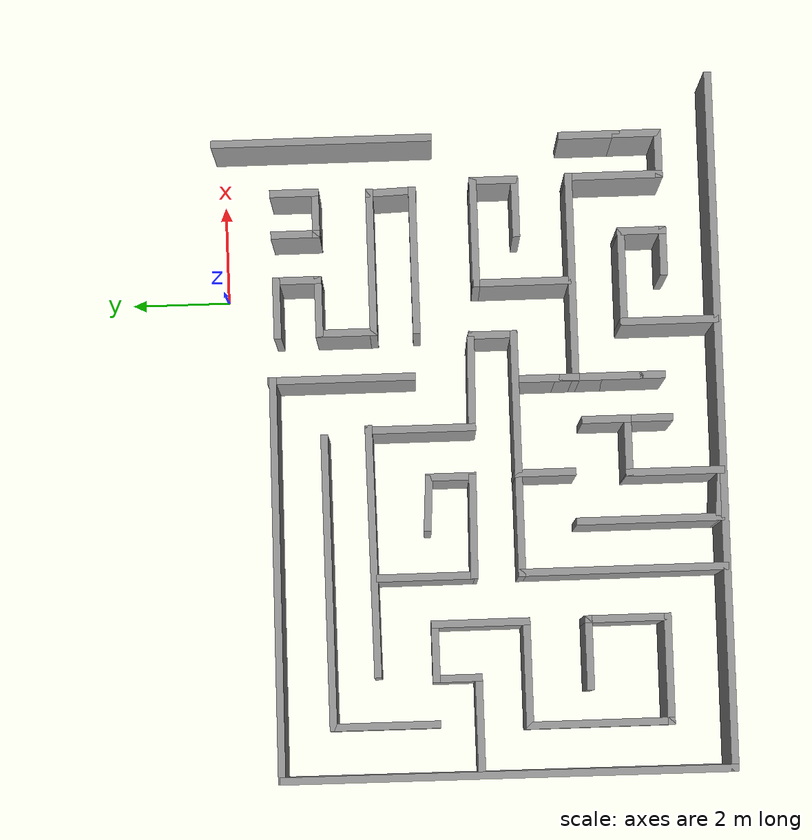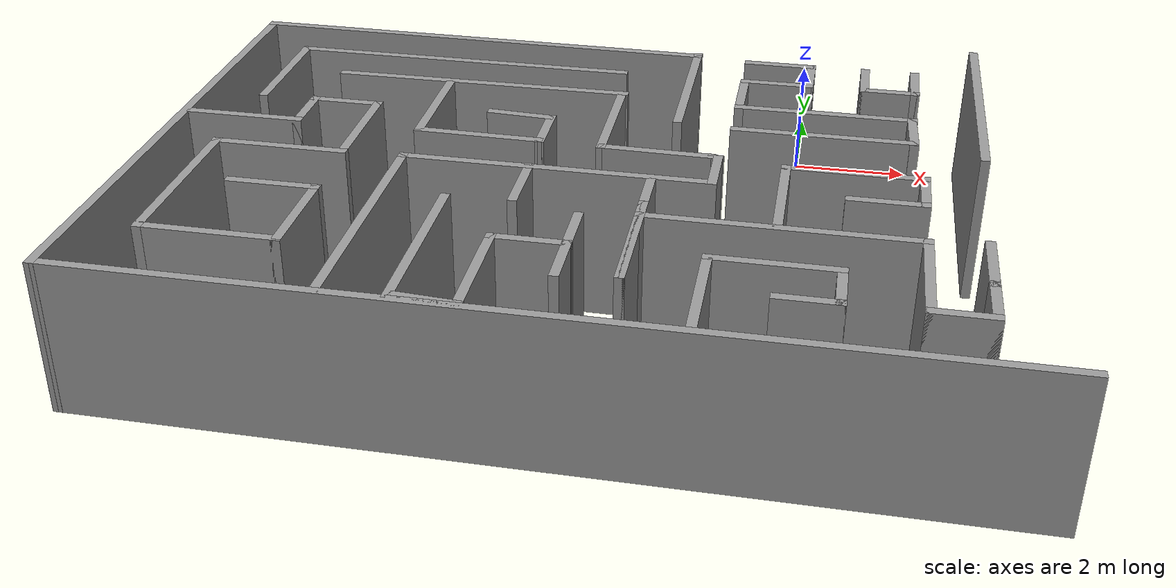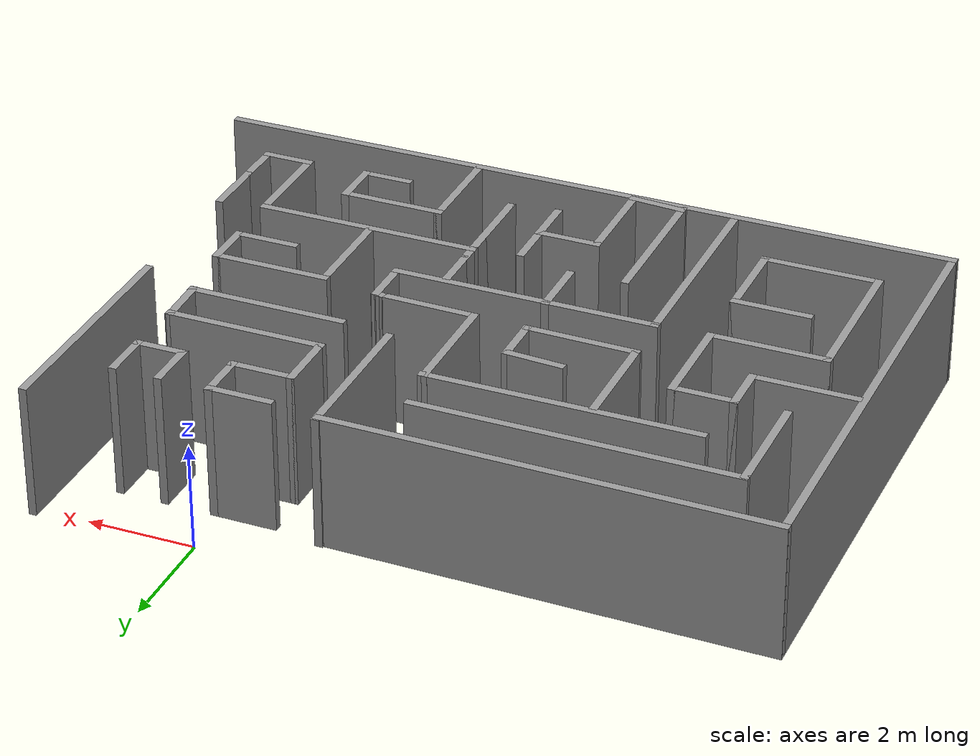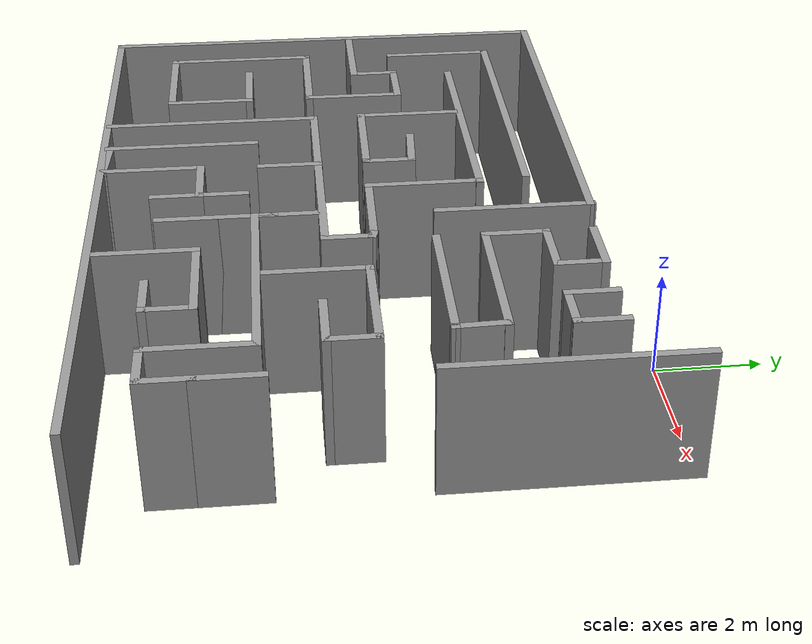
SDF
<sdf version="1.5">
 <model name="Maze2">
  <pose>-2.952 0.082564 0 0 -0 0</pose>
  <link name="Wall_0">
   <collision name="Wall_0_Collision">
    <geometry><box><size>3 0.15 2.5</size></box></geometry>
    <pose>0 0 1.25 0 -0 0</pose>
   </collision>
   <visual name="Wall_0_Visual">
    <pose>0 0 1.25 0 -0 0</pose>
    <geometry><box><size>3 0.15 2.5</size></box></geometry>
    <material>
     <script><uri>file://media/materials/scripts/gazebo.material</uri><name>Gazebo/Grey</name></script>
     <ambient>1 1 1 1</ambient>
    </material>
    <meta><layer>0</layer></meta>
   </visual>
   <pose>1.05662 -2.41881 0 0 -0 1.5708</pose>
  </link>
  <link name="Wall_1">
   <collision name="Wall_1_Collision">
    <geometry><box><size>8.23971 0.15 2.5</size></box></geometry>
    <pose>0 0 1.25 0 -0 0</pose>
   </collision>
   <visual name="Wall_1_Visual">
    <pose>0 0 1.25 0 -0 0</pose>
    <geometry><box><size>8.23971 0.15 2.5</size></box></geometry>
    <material>
     <script><uri>file://media/materials/scripts/gazebo.material</uri><name>Gazebo/Grey</name></script>
     <ambient>1 1 1 1</ambient>
    </material>
    <meta><layer>0</layer></meta>
   </visual>
   <pose>-2.9881 -0.991516 0 0 -0 3.13346</pose>
  </link>
  <link name="Wall_10">
   <collision name="Wall_10_Collision">
    <geometry><box><size>2.21006 0.15 2.5</size></box></geometry>
    <pose>0 0 1.25 0 -0 0</pose>
   </collision>
   <visual name="Wall_10_Visual">
    <pose>0 0 1.25 0 -0 0</pose>
    <geometry><box><size>2.21006 0.15 2.5</size></box></geometry>
    <material>
     <script><uri>file://media/materials/scripts/gazebo.material</uri><name>Gazebo/Grey</name></script>
     <ambient>1 1 1 1</ambient>
    </material>
    <meta><layer>0</layer></meta>
   </visual>
   <pose>-5.99208 -3.09041 0 0 -0 -1.57273</pose>
  </link>
  <link name="Wall_100">
   <collision name="Wall_100_Collision">
    <geometry><box><size>1 0.15 2.5</size></box></geometry>
    <pose>0 0 1.25 0 -0 0</pose>
   </collision>
   <visual name="Wall_100_Visual">
    <pose>0 0 1.25 0 -0 0</pose>
    <geometry><box><size>1 0.15 2.5</size></box></geometry>
    <material>
     <script><uri>file://media/materials/scripts/gazebo.material</uri><name>Gazebo/Grey</name></script>
     <ambient>1 1 1 1</ambient>
    </material>
    <meta><layer>0</layer></meta>
   </visual>
   <pose>3.45154 -9.03895 0 0 -0 3.14159</pose>
  </link>
  <link name="Wall_102">
   <collision name="Wall_102_Collision">
    <geometry><box><size>1 0.15 2.5</size></box></geometry>
    <pose>0 0 1.25 0 -0 0</pose>
   </collision>
   <visual name="Wall_102_Visual">
    <pose>0 0 1.25 0 -0 0</pose>
    <geometry><box><size>1 0.15 2.5</size></box></geometry>
    <material>
     <script><uri>file://media/materials/scripts/gazebo.material</uri><name>Gazebo/Grey</name></script>
     <ambient>1 1 1 1</ambient>
    </material>
    <meta><layer>0</layer></meta>
   </visual>
   <pose>0.053539 -8.60778 0 0 -0 -1.5708</pose>
  </link>
  <link name="Wall_12">
   <collision name="Wall_12_Collision">
    <geometry><box><size>5.1119 0.15 2.5</size></box></geometry>
    <pose>0 0 1.25 0 -0 0</pose>
   </collision>
   <visual name="Wall_12_Visual">
    <pose>0 0 1.25 0 -0 0</pose>
    <geometry><box><size>5.1119 0.15 2.5</size></box></geometry>
    <material>
     <script><uri>file://media/materials/scripts/gazebo.material</uri><name>Gazebo/Grey</name></script>
     <ambient>1 1 1 1</ambient>
    </material>
    <meta><layer>0</layer></meta>
   </visual>
   <pose>-2.46512 -2.94659 0 0 -0 0.006165</pose>
  </link>
  <link name="Wall_13">
   <collision name="Wall_13_Collision">
    <geometry><box><size>2.25 0.15 2.5</size></box></geometry>
    <pose>0 0 1.25 0 -0 0</pose>
   </collision>
   <visual name="Wall_13_Visual">
    <pose>0 0 1.25 0 -0 0</pose>
    <geometry><box><size>2.25 0.15 2.5</size></box></geometry>
    <material>
     <script><uri>file://media/materials/scripts/gazebo.material</uri><name>Gazebo/Grey</name></script>
     <ambient>1 1 1 1</ambient>
    </material>
    <meta><layer>0</layer></meta>
   </visual>
   <pose>-0.014812 -3.9813 0 0 -0 -1.5708</pose>
  </link>
  <link name="Wall_134">
   <collision name="Wall_134_Collision">
    <geometry><box><size>4.5 0.15 2.5</size></box></geometry>
    <pose>0 0 1.25 0 -0 0</pose>
   </collision>
   <visual name="Wall_134_Visual">
    <pose>0 0 1.25 0 -0 0</pose>
    <geometry><box><size>4.5 0.15 2.5</size></box></geometry>
    <material>
     <script><uri>file://media/materials/scripts/gazebo.material</uri><name>Gazebo/Grey</name></script>
     <ambient>1 1 1 1</ambient>
    </material>
    <meta><layer>0</layer></meta>
   </visual>
   <pose>5.9379 -2.1578 0 0 -0 -1.5708</pose>
  </link>
  <link name="Wall_136">
   <collision name="Wall_136_Collision">
    <geometry><box><size>1 0.15 2.5</size></box></geometry>
    <pose>0 0 1.25 0 -0 0</pose>
   </collision>
   <visual name="Wall_136_Visual">
    <pose>0 0 1.25 0 -0 0</pose>
    <geometry><box><size>1 0.15 2.5</size></box></geometry>
    <material>
     <script><uri>file://media/materials/scripts/gazebo.material</uri><name>Gazebo/Grey</name></script>
     <ambient>1 1 1 1</ambient>
    </material>
    <meta><layer>0</layer></meta>
   </visual>
   <pose>5.45373 -9.01313 0 0 -0 0</pose>
  </link>
  <link name="Wall_137">
   <collision name="Wall_137_Collision">
    <geometry><box><size>1 0.15 2.5</size></box></geometry>
    <pose>0 0 1.25 0 -0 0</pose>
   </collision>
   <visual name="Wall_137_Visual">
    <pose>0 0 1.25 0 -0 0</pose>
    <geometry><box><size>1 0.15 2.5</size></box></geometry>
    <material>
     <script><uri>file://media/materials/scripts/gazebo.material</uri><name>Gazebo/Grey</name></script>
     <ambient>1 1 1 1</ambient>
    </material>
    <meta><layer>0</layer></meta>
   </visual>
   <pose>5.87873 -8.58813 0 0 -0 1.5708</pose>
  </link>
  <link name="Wall_138">
   <collision name="Wall_138_Collision">
    <geometry><box><size>1.25 0.15 2.5</size></box></geometry>
    <pose>0 0 1.25 0 -0 0</pose>
   </collision>
   <visual name="Wall_138_Visual">
    <pose>0 0 1.25 0 -0 0</pose>
    <geometry><box><size>1.25 0.15 2.5</size></box></geometry>
    <material>
     <script><uri>file://media/materials/scripts/gazebo.material</uri><name>Gazebo/Grey</name></script>
     <ambient>1 1 1 1</ambient>
    </material>
    <meta><layer>0</layer></meta>
   </visual>
   <pose>5.87873 -7.61313 0 0 -0 1.5708</pose>
  </link>
  <link name="Wall_14">
   <collision name="Wall_14_Collision">
    <geometry><box><size>1.88847 0.15 2.5</size></box></geometry>
    <pose>0 0 1.25 0 -0 0</pose>
   </collision>
   <visual name="Wall_14_Visual">
    <pose>0 0 1.25 0 -0 0</pose>
    <geometry><box><size>1.88847 0.15 2.5</size></box></geometry>
    <material>
     <script><uri>file://media/materials/scripts/gazebo.material</uri><name>Gazebo/Grey</name></script>
     <ambient>1 1 1 1</ambient>
    </material>
    <meta><layer>0</layer></meta>
   </visual>
   <pose>0.884876 -5.04659 0 0 -0 -0.017597</pose>
  </link>
  <link name="Wall_140">
   <collision name="Wall_140_Collision">
    <geometry><box><size>2 0.15 2.5</size></box></geometry>
    <pose>0 0 1.25 0 -0 0</pose>
   </collision>
   <visual name="Wall_140_Visual">
    <pose>0 0 1.25 0 -0 0</pose>
    <geometry><box><size>2 0.15 2.5</size></box></geometry>
    <material>
     <script><uri>file://media/materials/scripts/gazebo.material</uri><name>Gazebo/Grey</name></script>
     <ambient>1 1 1 1</ambient>
    </material>
    <meta><layer>0</layer></meta>
   </visual>
   <pose>2.91262 -6.14071 0 0 -0 1.5708</pose>
  </link>
  <link name="Wall_141">
   <collision name="Wall_141_Collision">
    <geometry><box><size>2.25 0.15 2.5</size></box></geometry>
    <pose>0 0 1.25 0 -0 0</pose>
   </collision>
   <visual name="Wall_141_Visual">
    <pose>0 0 1.25 0 -0 0</pose>
    <geometry><box><size>2.25 0.15 2.5</size></box></geometry>
    <material>
     <script><uri>file://media/materials/scripts/gazebo.material</uri><name>Gazebo/Grey</name></script>
     <ambient>1 1 1 1</ambient>
    </material>
    <meta><layer>0</layer></meta>
   </visual>
   <pose>3.96261 -5.21571 0 0 -0 0</pose>
  </link>
  <link name="Wall_142">
   <collision name="Wall_142_Collision">
    <geometry><box><size>1 0.15 2.5</size></box></geometry>
    <pose>0 0 1.25 0 -0 0</pose>
   </collision>
   <visual name="Wall_142_Visual">
    <pose>0 0 1.25 0 -0 0</pose>
    <geometry><box><size>1 0.15 2.5</size></box></geometry>
    <material>
     <script><uri>file://media/materials/scripts/gazebo.material</uri><name>Gazebo/Grey</name></script>
     <ambient>1 1 1 1</ambient>
    </material>
    <meta><layer>0</layer></meta>
   </visual>
   <pose>5.01262 -5.64071 0 0 -0 -1.5708</pose>
  </link>
  <link name="Wall_143">
   <collision name="Wall_143_Collision">
    <geometry><box><size>1.25 0.15 2.5</size></box></geometry>
    <pose>0 0 1.25 0 -0 0</pose>
   </collision>
   <visual name="Wall_143_Visual">
    <pose>0 0 1.25 0 -0 0</pose>
    <geometry><box><size>1.25 0.15 2.5</size></box></geometry>
    <material>
     <script><uri>file://media/materials/scripts/gazebo.material</uri><name>Gazebo/Grey</name></script>
     <ambient>1 1 1 1</ambient>
    </material>
    <meta><layer>0</layer></meta>
   </visual>
   <pose>4.46262 -6.06571 0 0 -0 3.14159</pose>
  </link>
  <link name="Wall_145">
   <collision name="Wall_145_Collision">
    <geometry><box><size>3 0.15 2.5</size></box></geometry>
    <pose>0 0 1.25 0 -0 0</pose>
   </collision>
   <visual name="Wall_145_Visual">
    <pose>0 0 1.25 0 -0 0</pose>
    <geometry><box><size>3 0.15 2.5</size></box></geometry>
    <material>
     <script><uri>file://media/materials/scripts/gazebo.material</uri><name>Gazebo/Grey</name></script>
     <ambient>1 1 1 1</ambient>
    </material>
    <meta><layer>0</layer></meta>
   </visual>
   <pose>3.43258 -3.97421 0 0 -0 0</pose>
  </link>
  <link name="Wall_146">
   <collision name="Wall_146_Collision">
    <geometry><box><size>1.03086 0.15 2.5</size></box></geometry>
    <pose>0 0 1.25 0 -0 0</pose>
   </collision>
   <visual name="Wall_146_Visual">
    <pose>0 0 1.25 0 -0 0</pose>
    <geometry><box><size>1.03086 0.15 2.5</size></box></geometry>
    <material>
     <script><uri>file://media/materials/scripts/gazebo.material</uri><name>Gazebo/Grey</name></script>
     <ambient>1 1 1 1</ambient>
    </material>
    <meta><layer>0</layer></meta>
   </visual>
   <pose>4.84229 -3.54165 0 0 -0 1.60553</pose>
  </link>
  <link name="Wall_147">
   <collision name="Wall_147_Collision">
    <geometry><box><size>3 0.15 2.5</size></box></geometry>
    <pose>0 0 1.25 0 -0 0</pose>
   </collision>
   <visual name="Wall_147_Visual">
    <pose>0 0 1.25 0 -0 0</pose>
    <geometry><box><size>3 0.15 2.5</size></box></geometry>
    <material>
     <script><uri>file://media/materials/scripts/gazebo.material</uri><name>Gazebo/Grey</name></script>
     <ambient>1 1 1 1</ambient>
    </material>
    <meta><layer>0</layer></meta>
   </visual>
   <pose>3.41729 -3.10148 0 0 -0 3.14159</pose>
  </link>
  <link name="Wall_149">
   <collision name="Wall_149_Collision">
    <geometry><box><size>1.25 0.15 2.5</size></box></geometry>
    <pose>0 0 1.25 0 -0 0</pose>
   </collision>
   <visual name="Wall_149_Visual">
    <pose>0 0 1.25 0 -0 0</pose>
    <geometry><box><size>1.25 0.15 2.5</size></box></geometry>
    <material>
     <script><uri>file://media/materials/scripts/gazebo.material</uri><name>Gazebo/Grey</name></script>
     <ambient>1 1 1 1</ambient>
    </material>
    <meta><layer>0</layer></meta>
   </visual>
   <pose>1.99229 -2.55148 0 0 -0 1.5708</pose>
  </link>
  <link name="Wall_15">
   <collision name="Wall_15_Collision">
    <geometry><box><size>0.25 0.15 2.5</size></box></geometry>
    <pose>0 0 1.25 0 -0 0</pose>
   </collision>
   <visual name="Wall_15_Visual">
    <pose>0 0 1.25 0 -0 0</pose>
    <geometry><box><size>0.25 0.15 2.5</size></box></geometry>
    <material>
     <script><uri>file://media/materials/scripts/gazebo.material</uri><name>Gazebo/Grey</name></script>
     <ambient>1 1 1 1</ambient>
    </material>
    <meta><layer>0</layer></meta>
   </visual>
   <pose>1.80227 -5.07483 0 0 -0 -0.261799</pose>
  </link>
  <link name="Wall_150">
   <collision name="Wall_150_Collision">
    <geometry><box><size>1.25 0.15 2.5</size></box></geometry>
    <pose>0 0 1.25 0 -0 0</pose>
   </collision>
   <visual name="Wall_150_Visual">
    <pose>0 0 1.25 0 -0 0</pose>
    <geometry><box><size>1.25 0.15 2.5</size></box></geometry>
    <material>
     <script><uri>file://media/materials/scripts/gazebo.material</uri><name>Gazebo/Grey</name></script>
     <ambient>1 1 1 1</ambient>
    </material>
    <meta><layer>0</layer></meta>
   </visual>
   <pose>2.54229 -2.00148 0 0 -0 0</pose>
  </link>
  <link name="Wall_151">
   <collision name="Wall_151_Collision">
    <geometry><box><size>1 0.15 2.5</size></box></geometry>
    <pose>0 0 1.25 0 -0 0</pose>
   </collision>
   <visual name="Wall_151_Visual">
    <pose>0 0 1.25 0 -0 0</pose>
    <geometry><box><size>1 0.15 2.5</size></box></geometry>
    <material>
     <script><uri>file://media/materials/scripts/gazebo.material</uri><name>Gazebo/Grey</name></script>
     <ambient>1 1 1 1</ambient>
    </material>
    <meta><layer>0</layer></meta>
   </visual>
   <pose>3.09229 -1.57648 0 0 -0 1.5708</pose>
  </link>
  <link name="Wall_152">
   <collision name="Wall_152_Collision">
    <geometry><box><size>1.25 0.15 2.5</size></box></geometry>
    <pose>0 0 1.25 0 -0 0</pose>
   </collision>
   <visual name="Wall_152_Visual">
    <pose>0 0 1.25 0 -0 0</pose>
    <geometry><box><size>1.25 0.15 2.5</size></box></geometry>
    <material>
     <script><uri>file://media/materials/scripts/gazebo.material</uri><name>Gazebo/Grey</name></script>
     <ambient>1 1 1 1</ambient>
    </material>
    <meta><layer>0</layer></meta>
   </visual>
   <pose>2.54229 -1.15148 0 0 -0 3.14159</pose>
  </link>
  <link name="Wall_154">
   <collision name="Wall_154_Collision">
    <geometry><box><size>1 0.15 2.5</size></box></geometry>
    <pose>0 0 1.25 0 -0 0</pose>
   </collision>
   <visual name="Wall_154_Visual">
    <pose>0 0 1.25 0 -0 0</pose>
    <geometry><box><size>1 0.15 2.5</size></box></geometry>
    <material>
     <script><uri>file://media/materials/scripts/gazebo.material</uri><name>Gazebo/Grey</name></script>
     <ambient>1 1 1 1</ambient>
    </material>
    <meta><layer>0</layer></meta>
   </visual>
   <pose>4.03443 -1.57328 0 0 -0 -1.5708</pose>
  </link>
  <link name="Wall_155">
   <collision name="Wall_155_Collision">
    <geometry><box><size>1 0.15 2.5</size></box></geometry>
    <pose>0 0 1.25 0 -0 0</pose>
   </collision>
   <visual name="Wall_155_Visual">
    <pose>0 0 1.25 0 -0 0</pose>
    <geometry><box><size>1 0.15 2.5</size></box></geometry>
    <material>
     <script><uri>file://media/materials/scripts/gazebo.material</uri><name>Gazebo/Grey</name></script>
     <ambient>1 1 1 1</ambient>
    </material>
    <meta><layer>0</layer></meta>
   </visual>
   <pose>4.45943 -1.99828 0 0 -0 0</pose>
  </link>
  <link name="Wall_156">
   <collision name="Wall_156_Collision">
    <geometry><box><size>1 0.15 2.5</size></box></geometry>
    <pose>0 0 1.25 0 -0 0</pose>
   </collision>
   <visual name="Wall_156_Visual">
    <pose>0 0 1.25 0 -0 0</pose>
    <geometry><box><size>1 0.15 2.5</size></box></geometry>
    <material>
     <script><uri>file://media/materials/scripts/gazebo.material</uri><name>Gazebo/Grey</name></script>
     <ambient>1 1 1 1</ambient>
    </material>
    <meta><layer>0</layer></meta>
   </visual>
   <pose>4.88443 -1.57328 0 0 -0 1.5708</pose>
  </link>
  <link name="Wall_16">
   <collision name="Wall_16_Collision">
    <geometry><box><size>1 0.15 2.5</size></box></geometry>
    <pose>0 0 1.25 0 -0 0</pose>
   </collision>
   <visual name="Wall_16_Visual">
    <pose>0 0 1.25 0 -0 0</pose>
    <geometry><box><size>1 0.15 2.5</size></box></geometry>
    <material>
     <script><uri>file://media/materials/scripts/gazebo.material</uri><name>Gazebo/Grey</name></script>
     <ambient>1 1 1 1</ambient>
    </material>
    <meta><layer>0</layer></meta>
   </visual>
   <pose>1.85057 -5.51277 0 0 -0 -1.5708</pose>
  </link>
  <link name="Wall_17">
   <collision name="Wall_17_Collision">
    <geometry><box><size>5 0.15 2.5</size></box></geometry>
    <pose>0 0 1.25 0 -0 0</pose>
   </collision>
   <visual name="Wall_17_Visual">
    <pose>0 0 1.25 0 -0 0</pose>
    <geometry><box><size>5 0.15 2.5</size></box></geometry>
    <material>
     <script><uri>file://media/materials/scripts/gazebo.material</uri><name>Gazebo/Grey</name></script>
     <ambient>1 1 1 1</ambient>
    </material>
    <meta><layer>0</layer></meta>
   </visual>
   <pose>-0.574434 -5.93777 0 0 -0 3.14159</pose>
  </link>
  <link name="Wall_19">
   <collision name="Wall_19_Collision">
    <geometry><box><size>4.25 0.15 2.5</size></box></geometry>
    <pose>0 0 1.25 0 -0 0</pose>
   </collision>
   <visual name="Wall_19_Visual">
    <pose>0 0 1.25 0 -0 0</pose>
    <geometry><box><size>4.25 0.15 2.5</size></box></geometry>
    <material>
     <script><uri>file://media/materials/scripts/gazebo.material</uri><name>Gazebo/Grey</name></script>
     <ambient>1 1 1 1</ambient>
    </material>
    <meta><layer>0</layer></meta>
   </visual>
   <pose>-2.99943 -7.98777 0 0 -0 -1.5708</pose>
  </link>
  <link name="Wall_2">
   <collision name="Wall_2_Collision">
    <geometry><box><size>9.23882 0.15 2.5</size></box></geometry>
    <pose>0 0 1.25 0 -0 0</pose>
   </collision>
   <visual name="Wall_2_Visual">
    <pose>0 0 1.25 0 -0 0</pose>
    <geometry><box><size>9.23882 0.15 2.5</size></box></geometry>
    <material>
     <script><uri>file://media/materials/scripts/gazebo.material</uri><name>Gazebo/Grey</name></script>
     <ambient>1 1 1 1</ambient>
    </material>
    <meta><layer>0</layer></meta>
   </visual>
   <pose>-7.05041 -5.53819 0 0 -0 -1.57467</pose>
  </link>
  <link name="Wall_21">
   <collision name="Wall_21_Collision">
    <geometry><box><size>2 0.15 2.5</size></box></geometry>
    <pose>0 0 1.25 0 -0 0</pose>
   </collision>
   <visual name="Wall_21_Visual">
    <pose>0 0 1.25 0 -0 0</pose>
    <geometry><box><size>2 0.15 2.5</size></box></geometry>
    <material>
     <script><uri>file://media/materials/scripts/gazebo.material</uri><name>Gazebo/Grey</name></script>
     <ambient>1 1 1 1</ambient>
    </material>
    <meta><layer>0</layer></meta>
   </visual>
   <pose>-6.0068 -4.98802 0 0 -0 0</pose>
  </link>
  <link name="Wall_22">
   <collision name="Wall_22_Collision">
    <geometry><box><size>1 0.15 2.5</size></box></geometry>
    <pose>0 0 1.25 0 -0 0</pose>
   </collision>
   <visual name="Wall_22_Visual">
    <pose>0 0 1.25 0 -0 0</pose>
    <geometry><box><size>1 0.15 2.5</size></box></geometry>
    <material>
     <script><uri>file://media/materials/scripts/gazebo.material</uri><name>Gazebo/Grey</name></script>
     <ambient>1 1 1 1</ambient>
    </material>
    <meta><layer>0</layer></meta>
   </visual>
   <pose>-5.0818 -4.56302 0 0 -0 1.5708</pose>
  </link>
  <link name="Wall_23">
   <collision name="Wall_23_Collision">
    <geometry><box><size>1.25 0.15 2.5</size></box></geometry>
    <pose>0 0 1.25 0 -0 0</pose>
   </collision>
   <visual name="Wall_23_Visual">
    <pose>0 0 1.25 0 -0 0</pose>
    <geometry><box><size>1.25 0.15 2.5</size></box></geometry>
    <material>
     <script><uri>file://media/materials/scripts/gazebo.material</uri><name>Gazebo/Grey</name></script>
     <ambient>1 1 1 1</ambient>
    </material>
    <meta><layer>0</layer></meta>
   </visual>
   <pose>-4.5318 -4.13802 0 0 -0 0</pose>
  </link>
  <link name="Wall_24">
   <collision name="Wall_24_Collision">
    <geometry><box><size>2 0.15 2.5</size></box></geometry>
    <pose>0 0 1.25 0 -0 0</pose>
   </collision>
   <visual name="Wall_24_Visual">
    <pose>0 0 1.25 0 -0 0</pose>
    <geometry><box><size>2 0.15 2.5</size></box></geometry>
    <material>
     <script><uri>file://media/materials/scripts/gazebo.material</uri><name>Gazebo/Grey</name></script>
     <ambient>1 1 1 1</ambient>
    </material>
    <meta><layer>0</layer></meta>
   </visual>
   <pose>-3.9818 -5.06302 0 0 -0 -1.5708</pose>
  </link>
  <link name="Wall_25">
   <collision name="Wall_25_Collision">
    <geometry><box><size>2.25 0.15 2.5</size></box></geometry>
    <pose>0 0 1.25 0 -0 0</pose>
   </collision>
   <visual name="Wall_25_Visual">
    <pose>0 0 1.25 0 -0 0</pose>
    <geometry><box><size>2.25 0.15 2.5</size></box></geometry>
    <material>
     <script><uri>file://media/materials/scripts/gazebo.material</uri><name>Gazebo/Grey</name></script>
     <ambient>1 1 1 1</ambient>
    </material>
    <meta><layer>0</layer></meta>
   </visual>
   <pose>-5.0318 -5.98802 0 0 -0 3.14159</pose>
  </link>
  <link name="Wall_26">
   <collision name="Wall_26_Collision">
    <geometry><box><size>3 0.15 2.5</size></box></geometry>
    <pose>0 0 1.25 0 -0 0</pose>
   </collision>
   <visual name="Wall_26_Visual">
    <pose>0 0 1.25 0 -0 0</pose>
    <geometry><box><size>3 0.15 2.5</size></box></geometry>
    <material>
     <script><uri>file://media/materials/scripts/gazebo.material</uri><name>Gazebo/Grey</name></script>
     <ambient>1 1 1 1</ambient>
    </material>
    <meta><layer>0</layer></meta>
   </visual>
   <pose>-6.0818 -7.41302 0 0 -0 -1.5708</pose>
  </link>
  <link name="Wall_27">
   <collision name="Wall_27_Collision">
    <geometry><box><size>2.25 0.15 2.5</size></box></geometry>
    <pose>0 0 1.25 0 -0 0</pose>
   </collision>
   <visual name="Wall_27_Visual">
    <pose>0 0 1.25 0 -0 0</pose>
    <geometry><box><size>2.25 0.15 2.5</size></box></geometry>
    <material>
     <script><uri>file://media/materials/scripts/gazebo.material</uri><name>Gazebo/Grey</name></script>
     <ambient>1 1 1 1</ambient>
    </material>
    <meta><layer>0</layer></meta>
   </visual>
   <pose>-5.0318 -8.83802 0 0 -0 0</pose>
  </link>
  <link name="Wall_28">
   <collision name="Wall_28_Collision">
    <geometry><box><size>1.75 0.15 2.5</size></box></geometry>
    <pose>0 0 1.25 0 -0 0</pose>
   </collision>
   <visual name="Wall_28_Visual">
    <pose>0 0 1.25 0 -0 0</pose>
    <geometry><box><size>1.75 0.15 2.5</size></box></geometry>
    <material>
     <script><uri>file://media/materials/scripts/gazebo.material</uri><name>Gazebo/Grey</name></script>
     <ambient>1 1 1 1</ambient>
    </material>
    <meta><layer>0</layer></meta>
   </visual>
   <pose>-3.9818 -8.03802 0 0 -0 1.5708</pose>
  </link>
  <link name="Wall_29">
   <collision name="Wall_29_Collision">
    <geometry><box><size>1.5 0.15 2.5</size></box></geometry>
    <pose>0 0 1.25 0 -0 0</pose>
   </collision>
   <visual name="Wall_29_Visual">
    <pose>0 0 1.25 0 -0 0</pose>
    <geometry><box><size>1.5 0.15 2.5</size></box></geometry>
    <material>
     <script><uri>file://media/materials/scripts/gazebo.material</uri><name>Gazebo/Grey</name></script>
     <ambient>1 1 1 1</ambient>
    </material>
    <meta><layer>0</layer></meta>
   </visual>
   <pose>-4.6568 -7.23802 0 0 -0 3.14159</pose>
  </link>
  <link name="Wall_3">
   <collision name="Wall_3_Collision">
    <geometry><box><size>14.2395 0.15 2.5</size></box></geometry>
    <pose>0 0 1.25 0 -0 0</pose>
   </collision>
   <visual name="Wall_3_Visual">
    <pose>0 0 1.25 0 -0 0</pose>
    <geometry><box><size>14.2395 0.15 2.5</size></box></geometry>
    <material>
     <script><uri>file://media/materials/scripts/gazebo.material</uri><name>Gazebo/Grey</name></script>
     <ambient>1 1 1 1</ambient>
    </material>
    <meta><layer>0</layer></meta>
   </visual>
   <pose>-0.02325 -10.0826 0 0 -0 0</pose>
  </link>
  <link name="Wall_31">
   <collision name="Wall_31_Collision">
    <geometry><box><size>2.03059 0.15 2.5</size></box></geometry>
    <pose>0 0 1.25 0 -0 0</pose>
   </collision>
   <visual name="Wall_31_Visual">
    <pose>0 0 1.25 0 -0 0</pose>
    <geometry><box><size>2.03059 0.15 2.5</size></box></geometry>
    <material>
     <script><uri>file://media/materials/scripts/gazebo.material</uri><name>Gazebo/Grey</name></script>
     <ambient>1 1 1 1</ambient>
    </material>
    <meta><layer>0</layer></meta>
   </visual>
   <pose>-3.01625 -4.00113 0 0 -0 -1.5708</pose>
  </link>
  <link name="Wall_33">
   <collision name="Wall_33_Collision">
    <geometry><box><size>2.12788 0.15 2.5</size></box></geometry>
    <pose>0 0 1.25 0 -0 0</pose>
   </collision>
   <visual name="Wall_33_Visual">
    <pose>0 0 1.25 0 -0 0</pose>
    <geometry><box><size>2.12788 0.15 2.5</size></box></geometry>
    <material>
     <script><uri>file://media/materials/scripts/gazebo.material</uri><name>Gazebo/Grey</name></script>
     <ambient>1 1 1 1</ambient>
    </material>
    <meta><layer>0</layer></meta>
   </visual>
   <pose>-2.02743 -4.98731 0 0 -0 -0.015467</pose>
  </link>
  <link name="Wall_34">
   <collision name="Wall_34_Collision">
    <geometry><box><size>1.03059 0.15 2.5</size></box></geometry>
    <pose>0 0 1.25 0 -0 0</pose>
   </collision>
   <visual name="Wall_34_Visual">
    <pose>0 0 1.25 0 -0 0</pose>
    <geometry><box><size>1.03059 0.15 2.5</size></box></geometry>
    <material>
     <script><uri>file://media/materials/scripts/gazebo.material</uri><name>Gazebo/Grey</name></script>
     <ambient>1 1 1 1</ambient>
    </material>
    <meta><layer>0</layer></meta>
   </visual>
   <pose>-1.00802 -4.56231 0 0 -0 1.5708</pose>
  </link>
  <link name="Wall_35">
   <collision name="Wall_35_Collision">
    <geometry><box><size>1.12955 0.15 2.5</size></box></geometry>
    <pose>0 0 1.25 0 -0 0</pose>
   </collision>
   <visual name="Wall_35_Visual">
    <pose>0 0 1.25 0 -0 0</pose>
    <geometry><box><size>1.12955 0.15 2.5</size></box></geometry>
    <material>
     <script><uri>file://media/materials/scripts/gazebo.material</uri><name>Gazebo/Grey</name></script>
     <ambient>1 1 1 1</ambient>
    </material>
    <meta><layer>0</layer></meta>
   </visual>
   <pose>-1.52743 -4.09143 0 0 -0 3.07909</pose>
  </link>
  <link name="Wall_37">
   <collision name="Wall_37_Collision">
    <geometry><box><size>3 0.15 2.5</size></box></geometry>
    <pose>0 0 1.25 0 -0 0</pose>
   </collision>
   <visual name="Wall_37_Visual">
    <pose>0 0 1.25 0 -0 0</pose>
    <geometry><box><size>3 0.15 2.5</size></box></geometry>
    <material>
     <script><uri>file://media/materials/scripts/gazebo.material</uri><name>Gazebo/Grey</name></script>
     <ambient>1 1 1 1</ambient>
    </material>
    <meta><layer>0</layer></meta>
   </visual>
   <pose>-2.002 -8.5726 0 0 -0 -1.5708</pose>
  </link>
  <link name="Wall_38">
   <collision name="Wall_38_Collision">
    <geometry><box><size>1.10812 0.15 2.5</size></box></geometry>
    <pose>0 0 1.25 0 -0 0</pose>
   </collision>
   <visual name="Wall_38_Visual">
    <pose>0 0 1.25 0 -0 0</pose>
    <geometry><box><size>1.10812 0.15 2.5</size></box></geometry>
    <material>
     <script><uri>file://media/materials/scripts/gazebo.material</uri><name>Gazebo/Grey</name></script>
     <ambient>1 1 1 1</ambient>
    </material>
    <meta><layer>0</layer></meta>
   </visual>
   <pose>-1.52423 -9.9976 0 0 -0 -0.073499</pose>
  </link>
  <link name="Wall_39">
   <collision name="Wall_39_Collision">
    <geometry><box><size>2 0.15 2.5</size></box></geometry>
    <pose>0 0 1.25 0 -0 0</pose>
   </collision>
   <visual name="Wall_39_Visual">
    <pose>0 0 1.25 0 -0 0</pose>
    <geometry><box><size>2 0.15 2.5</size></box></geometry>
    <material>
     <script><uri>file://media/materials/scripts/gazebo.material</uri><name>Gazebo/Grey</name></script>
     <ambient>1 1 1 1</ambient>
    </material>
    <meta><layer>0</layer></meta>
   </visual>
   <pose>-1.04646 -9.10778 0 0 -0 1.5708</pose>
  </link>
  <link name="Wall_40">
   <collision name="Wall_40_Collision">
    <geometry><box><size>1.25 0.15 2.5</size></box></geometry>
    <pose>0 0 1.25 0 -0 0</pose>
   </collision>
   <visual name="Wall_40_Visual">
    <pose>0 0 1.25 0 -0 0</pose>
    <geometry><box><size>1.25 0.15 2.5</size></box></geometry>
    <material>
     <script><uri>file://media/materials/scripts/gazebo.material</uri><name>Gazebo/Grey</name></script>
     <ambient>1 1 1 1</ambient>
    </material>
    <meta><layer>0</layer></meta>
   </visual>
   <pose>-0.496461 -8.18278 0 0 -0 0</pose>
  </link>
  <link name="Wall_41">
   <collision name="Wall_41_Collision">
    <geometry><box><size>1 0.15 2.5</size></box></geometry>
    <pose>0 0 1.25 0 -0 0</pose>
   </collision>
   <visual name="Wall_41_Visual">
    <pose>0 0 1.25 0 -0 0</pose>
    <geometry><box><size>1 0.15 2.5</size></box></geometry>
    <material>
     <script><uri>file://media/materials/scripts/gazebo.material</uri><name>Gazebo/Grey</name></script>
     <ambient>1 1 1 1</ambient>
    </material>
    <meta><layer>0</layer></meta>
   </visual>
   <pose>0.053539 -7.75778 0 0 -0 1.5708</pose>
  </link>
  <link name="Wall_43">
   <collision name="Wall_43_Collision">
    <geometry><box><size>1.25 0.15 2.5</size></box></geometry>
    <pose>0 0 1.25 0 -0 0</pose>
   </collision>
   <visual name="Wall_43_Visual">
    <pose>0 0 1.25 0 -0 0</pose>
    <geometry><box><size>1.25 0.15 2.5</size></box></geometry>
    <material>
     <script><uri>file://media/materials/scripts/gazebo.material</uri><name>Gazebo/Grey</name></script>
     <ambient>1 1 1 1</ambient>
    </material>
    <meta><layer>0</layer></meta>
   </visual>
   <pose>-0.986489 -6.48013 0 0 -0 -1.5708</pose>
  </link>
  <link name="Wall_45">
   <collision name="Wall_45_Collision">
    <geometry><box><size>3 0.15 2.5</size></box></geometry>
    <pose>0 0 1.25 0 -0 0</pose>
   </collision>
   <visual name="Wall_45_Visual">
    <pose>0 0 1.25 0 -0 0</pose>
    <geometry><box><size>3 0.15 2.5</size></box></geometry>
    <material>
     <script><uri>file://media/materials/scripts/gazebo.material</uri><name>Gazebo/Grey</name></script>
     <ambient>1 1 1 1</ambient>
    </material>
    <meta><layer>0</layer></meta>
   </visual>
   <pose>0.928725 -7.48813 0 0 -0 -1.5708</pose>
  </link>
  <link name="Wall_46">
   <collision name="Wall_46_Collision">
    <geometry><box><size>2.25 0.15 2.5</size></box></geometry>
    <pose>0 0 1.25 0 -0 0</pose>
   </collision>
   <visual name="Wall_46_Visual">
    <pose>0 0 1.25 0 -0 0</pose>
    <geometry><box><size>2.25 0.15 2.5</size></box></geometry>
    <material>
     <script><uri>file://media/materials/scripts/gazebo.material</uri><name>Gazebo/Grey</name></script>
     <ambient>1 1 1 1</ambient>
    </material>
    <meta><layer>0</layer></meta>
   </visual>
   <pose>0.928725 -7.86313 0 0 -0 1.5708</pose>
  </link>
  <link name="Wall_47">
   <collision name="Wall_47_Collision">
    <geometry><box><size>0.15 0.15 2.5</size></box></geometry>
    <pose>0 0 1.25 0 -0 0</pose>
   </collision>
   <visual name="Wall_47_Visual">
    <pose>0 0 1.25 0 -0 0</pose>
    <geometry><box><size>0.15 0.15 2.5</size></box></geometry>
    <material>
     <script><uri>file://media/materials/scripts/gazebo.material</uri><name>Gazebo/Grey</name></script>
     <ambient>1 1 1 1</ambient>
    </material>
    <meta><layer>0</layer></meta>
   </visual>
   <pose>0.928725 -6.81313 0 0 -0 0</pose>
  </link>
  <link name="Wall_48">
   <collision name="Wall_48_Collision">
    <geometry><box><size>0.5 0.15 2.5</size></box></geometry>
    <pose>0 0 1.25 0 -0 0</pose>
   </collision>
   <visual name="Wall_48_Visual">
    <pose>0 0 1.25 0 -0 0</pose>
    <geometry><box><size>0.5 0.15 2.5</size></box></geometry>
    <material>
     <script><uri>file://media/materials/scripts/gazebo.material</uri><name>Gazebo/Grey</name></script>
     <ambient>1 1 1 1</ambient>
    </material>
    <meta><layer>0</layer></meta>
   </visual>
   <pose>0.928725 -6.98813 0 0 -0 -1.5708</pose>
  </link>
  <link name="Wall_49">
   <collision name="Wall_49_Collision">
    <geometry><box><size>4.25 0.15 2.5</size></box></geometry>
    <pose>0 0 1.25 0 -0 0</pose>
   </collision>
   <visual name="Wall_49_Visual">
    <pose>0 0 1.25 0 -0 0</pose>
    <geometry><box><size>4.25 0.15 2.5</size></box></geometry>
    <material>
     <script><uri>file://media/materials/scripts/gazebo.material</uri><name>Gazebo/Grey</name></script>
     <ambient>1 1 1 1</ambient>
    </material>
    <meta><layer>0</layer></meta>
   </visual>
   <pose>2.97872 -7.16313 0 0 -0 0</pose>
  </link>
  <link name="Wall_50">
   <collision name="Wall_50_Collision">
    <geometry><box><size>2 0.15 2.5</size></box></geometry>
    <pose>0 0 1.25 0 -0 0</pose>
   </collision>
   <visual name="Wall_50_Visual">
    <pose>0 0 1.25 0 -0 0</pose>
    <geometry><box><size>2 0.15 2.5</size></box></geometry>
    <material>
     <script><uri>file://media/materials/scripts/gazebo.material</uri><name>Gazebo/Grey</name></script>
     <ambient>1 1 1 1</ambient>
    </material>
    <meta><layer>0</layer></meta>
   </visual>
   <pose>5.02872 -8.08813 0 0 -0 -1.5708</pose>
  </link>
  <link name="Wall_9">
   <collision name="Wall_9_Collision">
    <geometry><box><size>6 0.15 2.5</size></box></geometry>
    <pose>0 0 1.25 0 -0 0</pose>
   </collision>
   <visual name="Wall_9_Visual">
    <pose>0 0 1.25 0 -0 0</pose>
    <geometry><box><size>6 0.15 2.5</size></box></geometry>
    <material>
     <script><uri>file://media/materials/scripts/gazebo.material</uri><name>Gazebo/Grey</name></script>
     <ambient>1 1 1 1</ambient>
    </material>
    <meta><layer>0</layer></meta>
   </visual>
   <pose>-3.06509 -2.02979 0 0 -0 3.14159</pose>
  </link>
  <link name="Wall_97">
   <collision name="Wall_97_Collision">
    <geometry><box><size>2 0.15 2.5</size></box></geometry>
    <pose>0 0 1.25 0 -0 0</pose>
   </collision>
   <visual name="Wall_97_Visual">
    <pose>0 0 1.25 0 -0 0</pose>
    <geometry><box><size>2 0.15 2.5</size></box></geometry>
    <material>
     <script><uri>file://media/materials/scripts/gazebo.material</uri><name>Gazebo/Grey</name></script>
     <ambient>1 1 1 1</ambient>
    </material>
    <meta><layer>0</layer></meta>
   </visual>
   <pose>2.02654 -9.11395 0 0 -0 1.5708</pose>
  </link>
  <link name="Wall_98">
   <collision name="Wall_98_Collision">
    <geometry><box><size>2 0.15 2.5</size></box></geometry>
    <pose>0 0 1.25 0 -0 0</pose>
   </collision>
   <visual name="Wall_98_Visual">
    <pose>0 0 1.25 0 -0 0</pose>
    <geometry><box><size>2 0.15 2.5</size></box></geometry>
    <material>
     <script><uri>file://media/materials/scripts/gazebo.material</uri><name>Gazebo/Grey</name></script>
     <ambient>1 1 1 1</ambient>
    </material>
    <meta><layer>0</layer></meta>
   </visual>
   <pose>2.95154 -8.18895 0 0 -0 0</pose>
  </link>
  <link name="Wall_99">
   <collision name="Wall_99_Collision">
    <geometry><box><size>1 0.15 2.5</size></box></geometry>
    <pose>0 0 1.25 0 -0 0</pose>
   </collision>
   <visual name="Wall_99_Visual">
    <pose>0 0 1.25 0 -0 0</pose>
    <geometry><box><size>1 0.15 2.5</size></box></geometry>
    <material>
     <script><uri>file://media/materials/scripts/gazebo.material</uri><name>Gazebo/Grey</name></script>
     <ambient>1 1 1 1</ambient>
    </material>
    <meta><layer>0</layer></meta>
   </visual>
   <pose>3.87654 -8.61395 0 0 -0 -1.5708</pose>
  </link>
  <static>1</static>
 </model>
</sdf>
